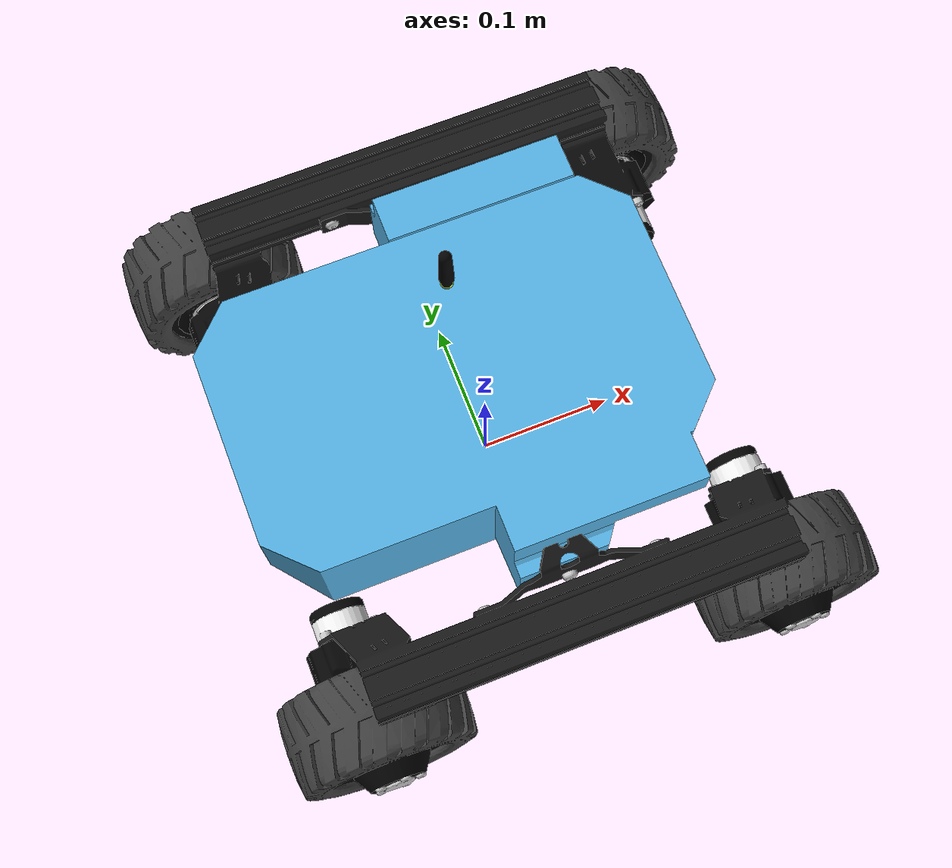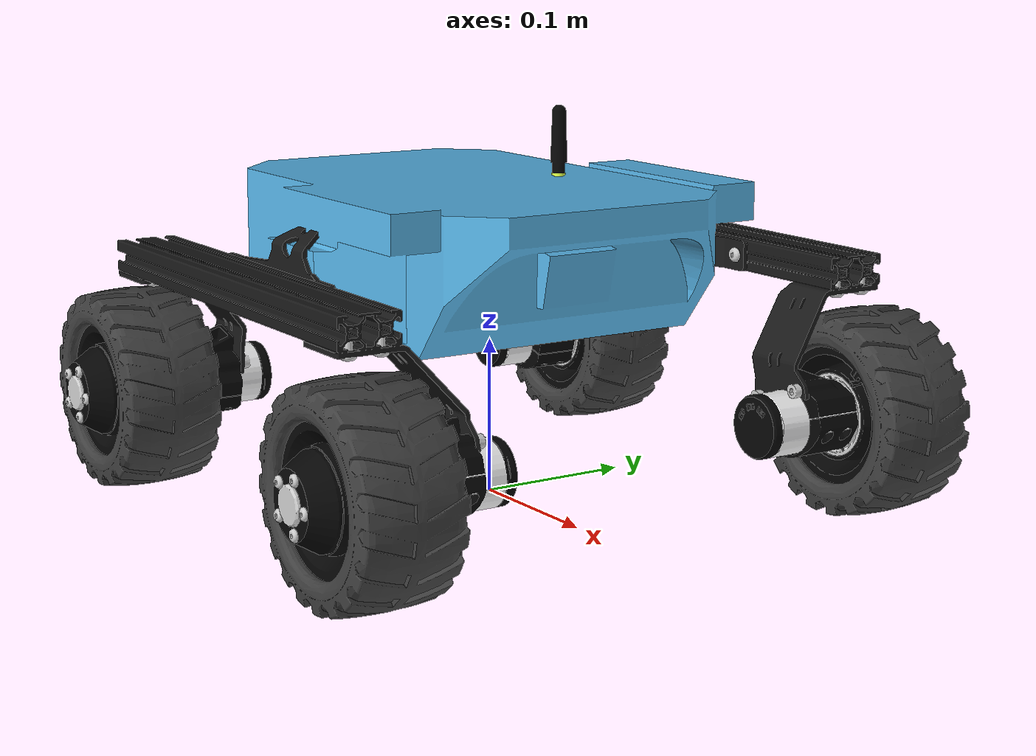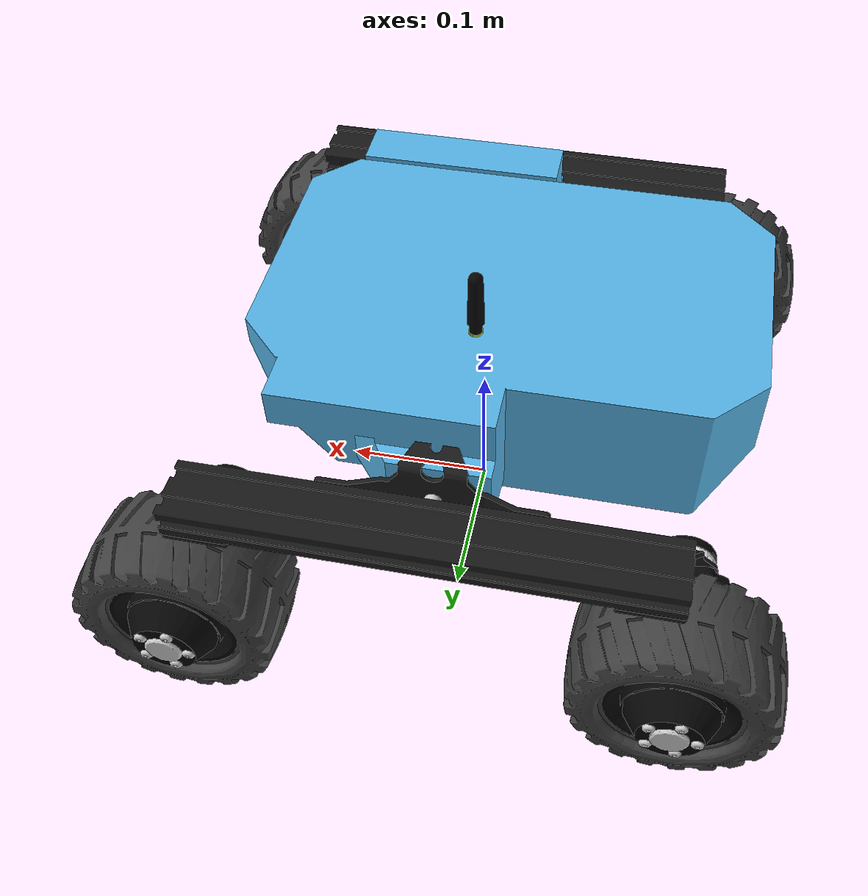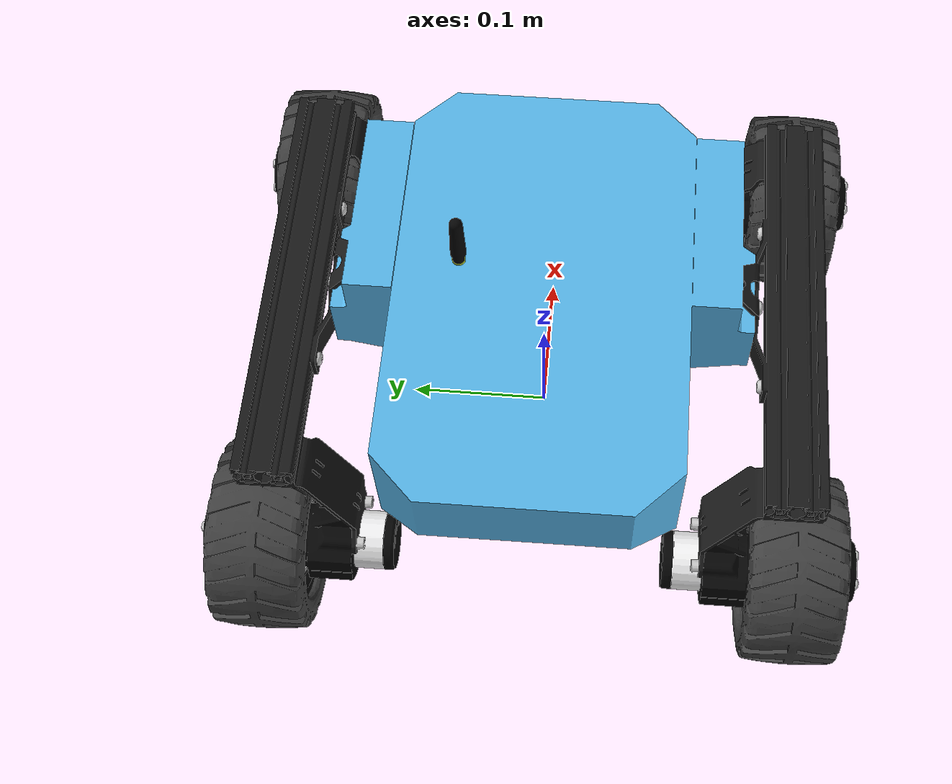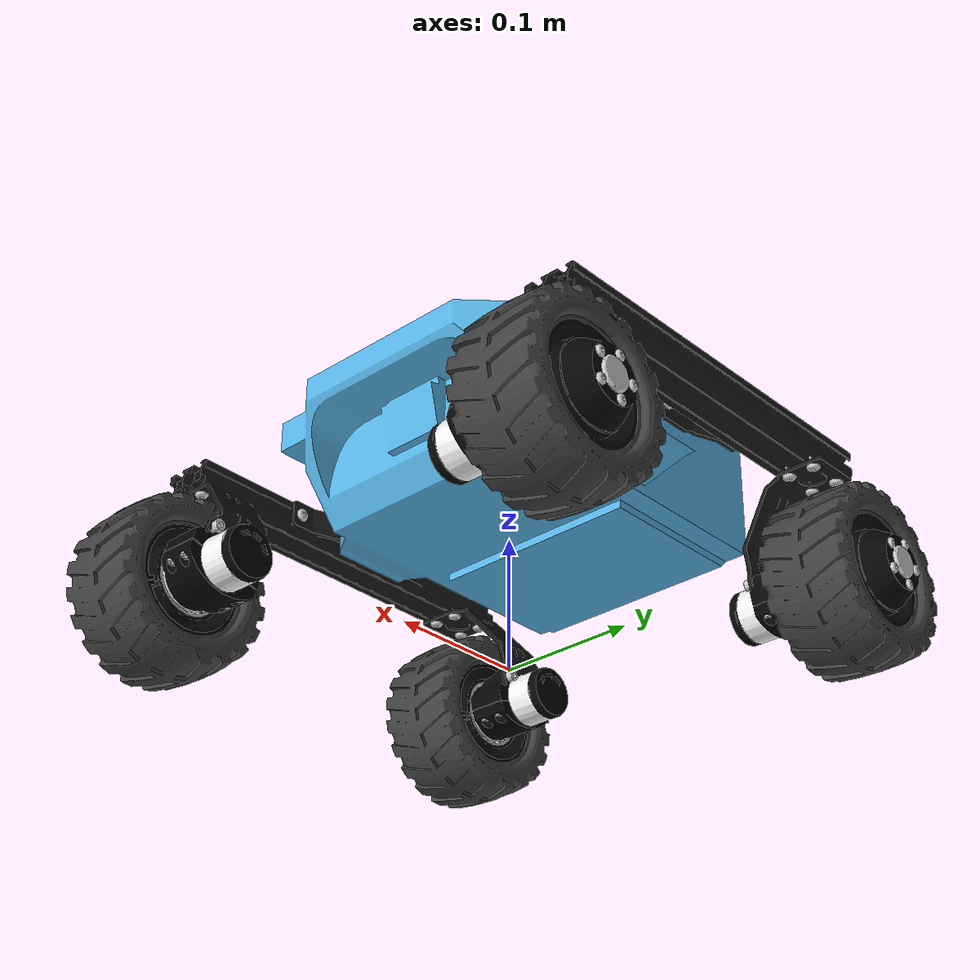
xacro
<?xml version="1.0"?>
<robot xmlns:xacro="http://ros.org/wiki/xacro"
       name="leo_sim">

  <xacro:arg name="fixed" default="false"/>
  <xacro:arg name="robot_ns" default=""/>
  <xacro:arg name="mecanum_wheels" default="false"/>

  <xacro:include filename="$(find leo_description)/urdf/macros.xacro"/>

  <xacro:leo_sim robot_ns="$(arg robot_ns)"
                 fixed="$(arg fixed)"
                 mecanum_wheels="$(arg mecanum_wheels)"/>

</robot>

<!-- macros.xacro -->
<robot xmlns:xacro="http://www.ros.org/wiki/xacro">

  <xacro:macro name="leo"
               params="default_antenna:=true
                       rockers_fixed:=true
                       footprint_link:=true
                       link_prefix:=''
                       joint_prefix:=''
                       imu_translation:='0.0628 -0.0314 -0.0393'
                       mecanum_wheels:=false">

    <xacro:macro name="rocker_link" params="name">
      <link name="${link_prefix}rocker_${name}_link">
        <inertial>
          <mass value="1.387336"/>
          <origin xyz="0 0.01346 -0.06506"/>
          <inertia
            ixx="0.002956" ixy="-0.000001489324" ixz="-0.000008103407"
            iyy="0.02924"  iyz="0.00007112"
            izz="0.02832"/>
        </inertial>
        <visual>
          <geometry>
            <mesh filename="package://leo_description/models/Rocker.dae"/>
          </geometry>
        </visual>
        <collision>
          <geometry>
            <mesh filename="package://leo_description/models/Rocker_outline.stl"/>
          </geometry>
        </collision>
      </link>
    </xacro:macro>

    <xacro:macro name="wheel_link" params="name model">
      <link name="${link_prefix}wheel_${name}_link">
        <inertial>
          <mass value="0.283642"/>
          <origin xyz="0 0.030026 0"/>
          <inertia
            ixx="0.000391"  ixy="0.00000123962" ixz="5.52582e-7"
            iyy="0.0004716" iyz="-0.000002082042"
            izz="0.000391"/>
        </inertial>
        <visual>
          <geometry>
            <mesh filename="package://leo_description/models/Wheel${model}.dae"/>
          </geometry>
        </visual>
        <collision>
          <origin xyz="0 0.04485 0" rpy="${pi/2} 0 0"/>
          <geometry>
            <cylinder radius="0.057" length="0.07"/>
          </geometry>
        </collision>
        <collision>
          <origin xyz="0 0.04485 0" rpy="${pi/2} 0 0"/>
          <geometry>
            <cylinder radius="0.0625" length="0.04"/>
          </geometry>
        </collision>
        <collision>
          <geometry>
            <mesh filename="package://leo_description/models/Wheel_outline.stl"/>
          </geometry>
        </collision>
      </link>
    </xacro:macro>

    <xacro:macro name="mecanum_wheel_link" params="name model">
      <link name="${link_prefix}wheel_${name}_link">
        <inertial>
          <mass value="0.672214"/>
          <origin xyz="0 -0.036852 0"/>
          <inertia
            ixx="0.0009778"  ixy="-8.10228e-7" ixz="3.2e-11"
            iyy="0.001321" iyz="5.7e-11"
            izz="0.0009773"/>
        </inertial>
        <visual>
          <geometry>
            <mesh filename="package://leo_description/models/WheelMecanum${model}.dae"/>
          </geometry>
        </visual>
        <collision>
          <origin xyz="0 -0.0317 0" rpy="${pi/2} 0 0"/>
          <geometry>
            <cylinder radius="0.0635" length="0.0515"/>
          </geometry>
        </collision>
        <collision>
          <geometry>
            <mesh filename="package://leo_description/models/Mecanum_wheel_outline.stl"/>
          </geometry>
        </collision>
      </link>
    </xacro:macro>

    <!-- LINKS -->
    <xacro:if value="${footprint_link}">
      <link name="${link_prefix}base_footprint"/>
    </xacro:if>

    <link name="${link_prefix}base_link">
      <inertial>
        <mass value="1.584994"/>
        <origin xyz="-0.019662 0.011643 -0.031802"/>
        <inertia
          ixx="0.01042" ixy="0.001177" ixz="-0.0008871"
          iyy="0.01045" iyz="0.0002226"
          izz="0.01817"/>
      </inertial>
      <visual>
        <geometry>
          <mesh filename="package://leo_description/models/Chassis.dae"/>
        </geometry>
      </visual>
      <collision>
        <geometry>
          <mesh filename="package://leo_description/models/Chassis_outline.stl"/>
        </geometry>
      </collision>
    </link>

    <xacro:rocker_link name="L"/>
    <xacro:rocker_link name="R"/>
    <xacro:if value="${mecanum_wheels}">
      <xacro:mecanum_wheel_link name="FL" model="B"/>
      <xacro:mecanum_wheel_link name="RL" model="A"/>
      <xacro:mecanum_wheel_link name="FR" model="A"/>
      <xacro:mecanum_wheel_link name="RR" model="B"/>
    </xacro:if>
    <xacro:unless value="${mecanum_wheels}">
      <xacro:wheel_link name="FL" model="A"/>
      <xacro:wheel_link name="RL" model="A"/>
      <xacro:wheel_link name="FR" model="B"/>
      <xacro:wheel_link name="RR" model="B"/>
    </xacro:unless>

    <xacro:if value="${default_antenna}">
      <link name="${link_prefix}antenna_link">
        <inertial>
          <mass value="0.001237"/>
          <origin xyz="0 0 0.028828"/>
          <inertia
            ixx="2.5529e-7" ixy="0.0" ixz="0.0"
            iyy="2.5529e-7" iyz="0.0"
            izz="1.354e-8"/>
        </inertial>
        <visual>
          <geometry>
            <mesh filename="package://leo_description/models/Antenna.dae"/>
          </geometry>
        </visual>
        <collision>
          <origin xyz="0 0 0.028"/>
          <geometry>
            <cylinder radius="0.0055" length="0.056"/>
          </geometry>
        </collision>
      </link>
    </xacro:if>

    <link name="${link_prefix}camera_frame"/>
    <link name="${link_prefix}camera_optical_frame"/>
    <link name="${link_prefix}imu_frame"/>

    <!-- JOINTS -->

    <xacro:if value="${footprint_link}">
      <joint name="${joint_prefix}base_joint" type="fixed">
        <origin xyz="0 0 0.19783" rpy="0 0 0"/>
        <parent link="${link_prefix}base_footprint"/>
        <child link="${link_prefix}base_link"/>
      </joint>
    </xacro:if>

    <xacro:if value="${rockers_fixed}">
      <xacro:property name="rockers_joint_type" value="fixed"/>
    </xacro:if>
    <xacro:unless value="${rockers_fixed}">
      <xacro:property name="rockers_joint_type" value="revolute"/>
    </xacro:unless>

    <joint name="${joint_prefix}rocker_L_joint" type="${rockers_joint_type}">
      <origin xyz="0.00263 0.14167 -0.04731" rpy="0 0 ${pi}"/>
      <parent link="${link_prefix}base_link"/>
      <child link="${link_prefix}rocker_L_link"/>
      <axis xyz="0 1 0"/>
      <limit effort="100.0" lower="-0.24" upper="0.24" velocity="100.0"/>
      <dynamics friction="1.0" damping="0.1"/>
    </joint>

    <joint name="${joint_prefix}rocker_R_joint" type="${rockers_joint_type}">
      <origin xyz="0.00263 -0.14167 -0.04731" rpy="0 0 0"/>
      <parent link="${link_prefix}base_link"/>
      <child link="${link_prefix}rocker_R_link"/>
      <axis xyz="0 1 0"/>
      <limit effort="100.0" lower="-0.24" upper="0.24" velocity="100.0"/>
      <dynamics friction="1.0" damping="0.1"/>
      <mimic joint="rocker_L_joint"/>
    </joint>

    <joint name="${joint_prefix}wheel_FL_joint" type="continuous">
      <xacro:if value="${mecanum_wheels}">
        <origin xyz="-0.15256 -0.00884 -0.08802" rpy="0 0 0"/>
      </xacro:if>
      <xacro:unless value="${mecanum_wheels}">
        <origin xyz="-0.15256 -0.08214 -0.08802" rpy="0 0 0"/>
      </xacro:unless>
      <parent link="${link_prefix}rocker_L_link"/>
      <child link="${link_prefix}wheel_FL_link"/>
      <axis xyz="0 -1 0"/>
      <limit effort="2.0" velocity="6.0"/>
      <dynamics friction="0.3125" damping="0.1"/>
    </joint>

    <joint name="${joint_prefix}wheel_RL_joint" type="continuous">
      <xacro:if value="${mecanum_wheels}">
        <origin xyz="0.15256 -0.00884 -0.08802" rpy="0 0 0"/>
      </xacro:if>
      <xacro:unless value="${mecanum_wheels}">
        <origin xyz="0.15256 -0.08214 -0.08802" rpy="0 0 0"/>
      </xacro:unless>
      <parent link="${link_prefix}rocker_L_link"/>
      <child link="${link_prefix}wheel_RL_link"/>
      <axis xyz="0 -1 0"/>
      <limit effort="2.0" velocity="6.0"/>
      <dynamics friction="0.3125" damping="0.1"/>
    </joint>

    <joint name="${joint_prefix}wheel_FR_joint" type="continuous">
      <xacro:if value="${mecanum_wheels}">
        <origin xyz="0.15256 -0.00884 -0.08802" rpy="0 0 0"/>
      </xacro:if>
      <xacro:unless value="${mecanum_wheels}">
        <origin xyz="0.15256 -0.08214 -0.08802" rpy="0 0 0"/>
      </xacro:unless>
      <parent link="${link_prefix}rocker_R_link"/>
      <child link="${link_prefix}wheel_FR_link"/>
      <axis xyz="0 1 0"/>
      <limit effort="2.0" velocity="6.0"/>
      <dynamics friction="0.3125" damping="0.1"/>
    </joint>

    <joint name="${joint_prefix}wheel_RR_joint" type="continuous">
      <xacro:if value="${mecanum_wheels}">
        <origin xyz="-0.15256 -0.00884 -0.08802" rpy="0 0 0"/>
      </xacro:if>
      <xacro:unless value="${mecanum_wheels}">
        <origin xyz="-0.15256 -0.08214 -0.08802" rpy="0 0 0"/>
      </xacro:unless>
      <parent link="${link_prefix}rocker_R_link"/>
      <child link="${link_prefix}wheel_RR_link"/>
      <axis xyz="0 1 0"/>
      <limit effort="2.0" velocity="6.0"/>
      <dynamics friction="0.3125" damping="0.1"/>
    </joint>

    <xacro:if value="${default_antenna}">
      <joint name="${joint_prefix}antenna_joint" type="fixed">
        <origin xyz="-0.0052 0.056 -0.0065" rpy="0 0 0"/>
        <parent link="${link_prefix}base_link"/>
        <child link="${link_prefix}antenna_link"/>
      </joint>
    </xacro:if>

    <joint name="${joint_prefix}camera_joint" type="fixed">
      <origin xyz="0.0971 0 -0.0427" rpy="0 0.2094 0"/>
      <parent link="${link_prefix}base_link"/>
      <child link="${link_prefix}camera_frame"/>
    </joint>

    <joint name="${joint_prefix}camera_optical_joint" type="fixed">
      <origin xyz="0 0 0" rpy="-${pi/2} 0.0 -${pi/2}"/>
      <parent link="${link_prefix}camera_frame"/>
      <child link="${link_prefix}camera_optical_frame"/>
    </joint>

    <joint name="${joint_prefix}imu_joint" type="fixed">
      <origin xyz="${imu_translation}" rpy="0 0 0"/>
      <parent link="${link_prefix}base_link"/>
      <child link="${link_prefix}imu_frame"/>
    </joint>

  </xacro:macro>

  <!-- LEO GAZEBO -->

  <xacro:macro name="leo_gazebo"
               params="robot_ns:='''">

    <xacro:property name="link_prefix" value=""/>
    <xacro:if value="${robot_ns != '' and robot_ns != '/'}">
      <xacro:property name="link_prefix" value="${robot_ns}/"/>
    </xacro:if>

    <!-- base ODE properties -->
    <gazebo reference="${link_prefix}base_footprint">
      <collision>
        <surface>
          <friction>
            <ode>
              <mu>0.3</mu>
              <mu2>0.3</mu2>
            </ode>
            <bullet>
              <friction>0.3</friction>
              <friction2>0.3</friction2>
              <rolling_friction>0.1</rolling_friction>
            </bullet>
          </friction>
        </surface>
      </collision>
    </gazebo>

    <gazebo reference="${link_prefix}base_link">
      <collision>
        <surface>
          <friction>
            <ode>
              <mu>0.3</mu>
              <mu2>0.3</mu2>
            </ode>
            <bullet>
              <friction>0.3</friction>
              <friction2>0.3</friction2>
              <rolling_friction>0.1</rolling_friction>
            </bullet>
          </friction>
        </surface>
      </collision>
    </gazebo>

    <!-- rocker ODE properties -->
    <gazebo reference="${link_prefix}rocker_L_link">
      <collision>
        <surface>
          <friction>
            <ode>
              <mu>0.3</mu>
              <mu2>0.3</mu2>
            </ode>
            <bullet>
              <friction>0.3</friction>
              <friction2>0.3</friction2>
              <rolling_friction>0.1</rolling_friction>
            </bullet>
          </friction>
        </surface>
      </collision>
    </gazebo>

    <gazebo reference="${link_prefix}rocker_R_link">
      <collision>
        <surface>
          <friction>
            <ode>
              <mu>0.3</mu>
              <mu2>0.3</mu2>
            </ode>
            <bullet>
              <friction>0.3</friction>
              <friction2>0.3</friction2>
              <rolling_friction>0.1</rolling_friction>
            </bullet>
          </friction>
        </surface>
      </collision>
    </gazebo>
    <!-- wheel ODE properties -->
    <gazebo reference="${link_prefix}wheel_FL_link">
      <collision>
        <surface>
          <friction>
            <ode>
              <mu>1</mu>
              <mu2>1</mu2>
              <slip1>0.035</slip1>
              <slip2>0</slip2>
              <fdir1>0 0 1</fdir1>
            </ode>
            <bullet>
              <friction>1</friction>
              <friction2>1</friction2>
              <rolling_friction>0.1</rolling_friction>
            </bullet>
          </friction>
        </surface>
      </collision>
    </gazebo>

    <gazebo reference="${link_prefix}wheel_FR_link">
      <collision>
        <surface>
          <friction>
            <ode>
              <mu>1</mu>
              <mu2>1</mu2>
              <slip1>0.035</slip1>
              <slip2>0</slip2>
              <fdir1>0 0 1</fdir1>
            </ode>
            <bullet>
              <friction>1</friction>
              <friction2>1</friction2>
              <rolling_friction>0.1</rolling_friction>
            </bullet>
          </friction>
        </surface>
      </collision>
    </gazebo>

    <gazebo reference="${link_prefix}wheel_RL_link">
      <collision>
        <surface>
          <friction>
            <ode>
              <mu>1</mu>
              <mu2>1</mu2>
              <slip1>0.035</slip1>
              <slip2>0</slip2>
              <fdir1>0 0 1</fdir1>
            </ode>
            <bullet>
              <friction>1</friction>
              <friction2>1</friction2>
              <rolling_friction>0.1</rolling_friction>
            </bullet>
          </friction>
        </surface>
      </collision>
    </gazebo>

    <gazebo reference="${link_prefix}wheel_RR_link">
      <collision>
        <surface>
          <friction>
            <ode>
              <mu>1</mu>
              <mu2>1</mu2>
              <slip1>0.035</slip1>
              <slip2>0</slip2>
              <fdir1>0 0 1</fdir1>
            </ode>
            <bullet>
              <friction>1</friction>
              <friction2>1</friction2>
              <rolling_friction>0.1</rolling_friction>
            </bullet>
          </friction>
        </surface>
      </collision>
    </gazebo>

    <!-- camera -->
    <gazebo reference="${link_prefix}camera_frame">
      <sensor name="camera" type="camera">
          <camera name="leo_camera">
              <horizontal_fov>1.9</horizontal_fov>
              <image>
                  <width>640</width>
                  <height>480</height>
                  <format>R8G8B8</format>
              </image>
              <clip>
                  <near>0.05</near>
                  <far>300</far>
              </clip>
              <noise>
                <type>gaussian</type>
                <mean>0.0</mean>
                <stddev>0.007</stddev>
              </noise>
              <distortion>
                <k1>-0.279817</k1>
                <k2>0.060321</k2>
                <k3>0.000487</k3>
                <p1>0.000310</p1>
                <p2>0.000000</p2>
                <center>0.5 0.5</center>
              </distortion>
          </camera>
          <always_on>1</always_on>
          <update_rate>30</update_rate>
          <visualize>true</visualize>
          <topic>${link_prefix}camera/image_raw</topic>
          <gz_frame_id>${link_prefix}camera_optical_frame</gz_frame_id>
      </sensor>
    </gazebo>

    <!-- rocker differential -->
    <gazebo>
      <plugin name="leo_gz::DifferentialSystem" filename="libleo_gz_differential_plugin.so">
        <jointA>rocker_L_joint</jointA>
        <jointB>rocker_R_joint</jointB>
        <forceConstant>100.0</forceConstant>
      </plugin>
    </gazebo>

    <gazebo>
      <plugin
        filename="libgz-sim-joint-state-publisher-system.so"
        name="gz::sim::systems::JointStatePublisher">
        <topic>${link_prefix}joint_states</topic>
      </plugin>
    </gazebo>

    <gazebo reference="${link_prefix}imu_frame">
      <sensor type="imu" name="leo_imu_sensor">
        <update_rate>100</update_rate>
        <visualize>true</visualize>
        <topic>${link_prefix}imu/data_raw</topic>
        <always_on>1</always_on>
        <gz_frame_id>${link_prefix}imu_frame</gz_frame_id>
      </sensor>
    </gazebo>
    <gazebo>

      <plugin
        filename="libgz-sim-diff-drive-system.so"
        name="gz::sim::systems::DiffDrive">
        <left_joint>wheel_FL_joint</left_joint>
        <right_joint>wheel_FR_joint</right_joint>
        <left_joint>wheel_RL_joint</left_joint>
        <right_joint>wheel_RR_joint</right_joint>
        <wheel_separation>0.358</wheel_separation>
        <wheel_radius>0.0625</wheel_radius>
        <frame_id>odom</frame_id>
        <child_frame_id>${link_prefix}base_footprint</child_frame_id>
        <odom_publish_frequency>20</odom_publish_frequency>
        <topic>${link_prefix}cmd_vel</topic>
        <odom_topic>${link_prefix}odom</odom_topic>
        <tf_topic>${link_prefix}tf</tf_topic>
        <max_linear_acceleration>2.5</max_linear_acceleration>
        <max_angular_acceleration>3</max_angular_acceleration>
        <min_linear_acceleration>-2.5</min_linear_acceleration>
        <min_angular_acceleration>-3</min_angular_acceleration>
      </plugin>
    </gazebo>
  </xacro:macro>

  <xacro:macro name="leo_sim"
               params="default_antenna:=true
                       fixed:=false
                       robot_ns:=''
                       mecanum_wheels:=false">

    <xacro:property name="link_prefix" value=""/>
    <xacro:if value="${robot_ns != '' and robot_ns != '/'}">
      <xacro:property name="link_prefix" value="${robot_ns}/"/>
    </xacro:if>

    <xacro:leo default_antenna="${default_antenna}"
               rockers_fixed="false"
               link_prefix="${link_prefix}"
               mecanum_wheels="${mecanum_wheels}"/>

    <xacro:leo_gazebo robot_ns="${robot_ns}"/>

    <xacro:if value="${fixed}">
      <link name="world"/>
      <joint name="fixed" type="fixed">
        <parent link="world"/>
        <child link="${link_prefix}base_footprint"/>
        <origin xyz="0.0 0.0 1.0"/>
      </joint>
    </xacro:if>

  </xacro:macro>

</robot>
